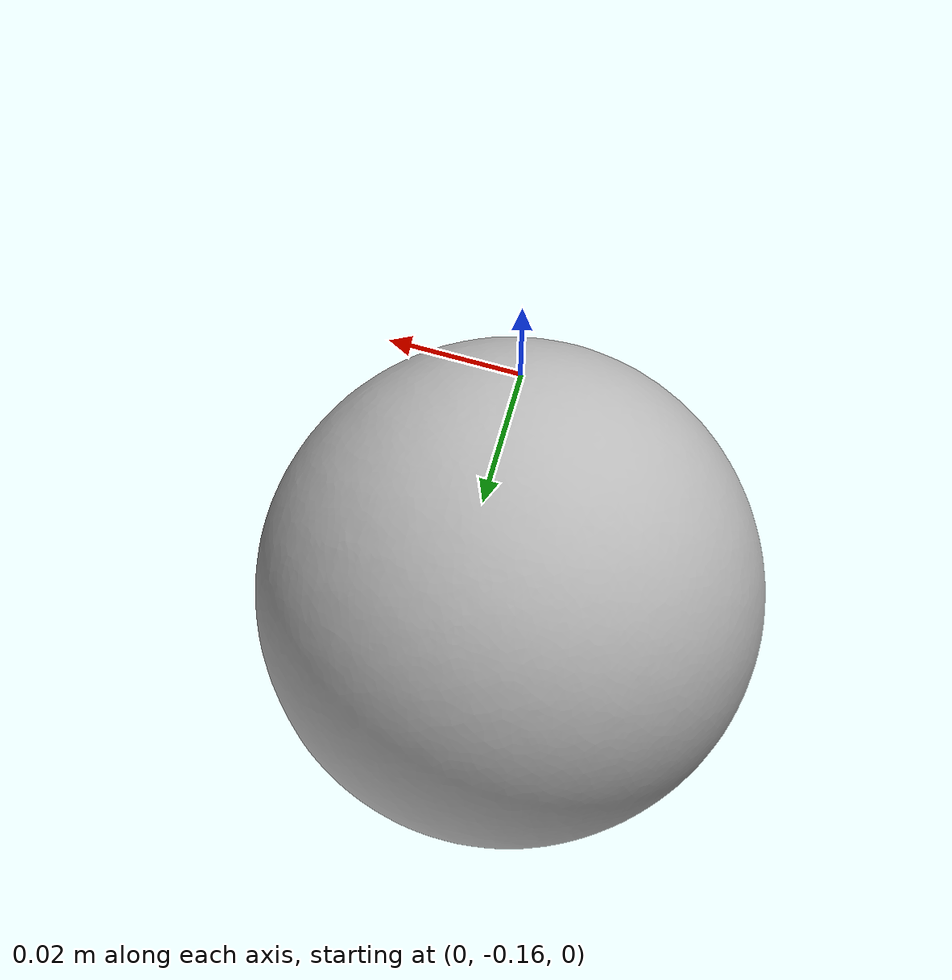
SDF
<?xml version='1.0'?>
<sdf version="1.4">
  <model name="racquetball">
    <static>false</static>
    <link name="link">
      <inertial>
        <pose>-0.009071044745210352 -0.12221649947970037 0.027571138362930195 1.0005117249213273 -1.1435365117104113 -2.4792474679433583</pose>
        <mass>9.106106830055334e-05</mass>
        <inertia>
          <ixx>2.844720627973769e-08</ixx>
          <ixy>2.624990085049321e-24</ixy>
          <ixz>1.0452217020191828e-25</ixz>
          <iyy>2.8427175241761365e-08</iyy>
          <iyz>3.3876931698608794e-25</iyz>
          <izz>2.8244091340000342e-08</izz>
        </inertia>
      </inertial>
      <collision name="collision">
        <geometry>
          <mesh>
            <!-- Use a downsampled mesh for collisions -->
            <uri>model://057_racquetball/google_16k/057_racquetball.obj</uri>
            </mesh>
        </geometry>
        <surface>
          <friction>
            <ode>
              <mu>0.9</mu>
              <mu2>0.9</mu2>
            </ode>
          </friction>
          <contact>
            <ode>
              <kp>1000000000000.0</kp>
              <kd>1</kd>
              <min_depth>0.0001</min_depth>
              <max_vel>0.01</max_vel>
            </ode>
          </contact>
          <bounce>
            <restitution_coefficient>0.1</restitution_coefficient>
            <threshold>1000.0</threshold>
          </bounce>
        </surface>
      </collision>
      <visual name="visual">
        <geometry>
          <mesh>
            <uri>model://057_racquetball/google_16k/057_racquetball.dae</uri>
            </mesh>
        </geometry>
      </visual>
    </link>
  </model>
</sdf>
